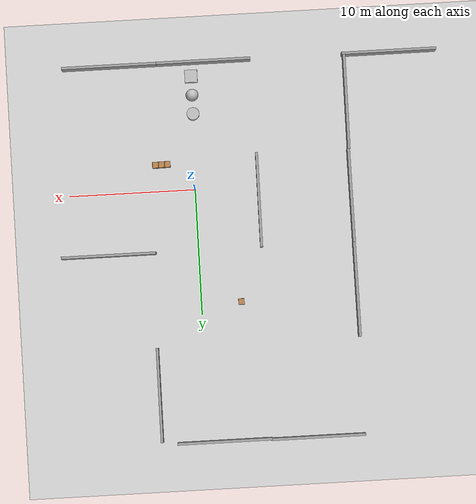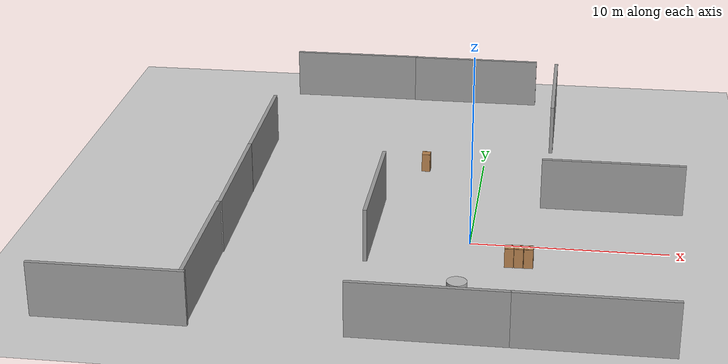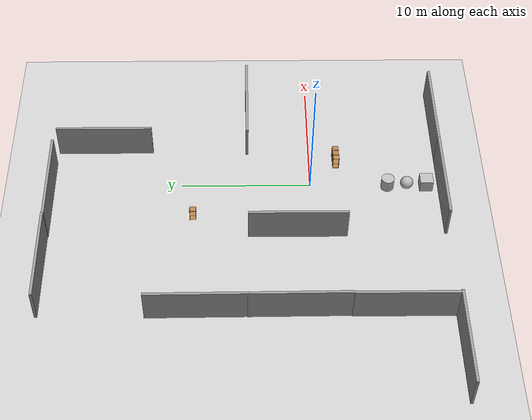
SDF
<sdf version="1.7">
 <world name="default">
  <model name="ground_plane">
   <static>1</static>
   <link name="link">
    <collision name="collision">
     <geometry><plane><normal>0 0 1</normal><size>100 100</size></plane></geometry>
     <surface><friction><ode><mu>100</mu><mu2>50</mu2></ode></friction></surface>
    </collision>
    <visual name="visual">
     <cast_shadows>0</cast_shadows>
     <geometry><plane><normal>0 0 1</normal><size>100 100</size></plane></geometry>
     <material>
      <script><uri>file://media/materials/scripts/gazebo.material</uri><name>Gazebo/Grey</name></script>
     </material>
    </visual>
   </link>
  </model>
  <model name="grey_wall">
   <static>1</static>
   <link name="link">
    <pose>0 0 1.4 0 -0 0</pose>
    <collision name="collision"><geometry><box><size>7.5 0.2 2.8</size></box></geometry></collision>
    <visual name="visual">
     <cast_shadows>0</cast_shadows>
     <geometry><box><size>7.5 0.2 2.8</size></box></geometry>
     <material>
      <script>
       <uri>model://grey_wall/materials/scripts</uri>
       <uri>model://grey_wall/materials/textures</uri>
       <name>vrc/grey_wall</name>
      </script>
     </material>
    </visual>
   </link>
   <pose>6.2728 -10.0751 0 0 -0 0</pose>
  </model>
  <model name="grey_wall_clone">
   <static>1</static>
   <link name="link">
    <pose>0 0 1.4 0 -0 0</pose>
    <collision name="collision"><geometry><box><size>7.5 0.2 2.8</size></box></geometry></collision>
    <visual name="visual">
     <cast_shadows>0</cast_shadows>
     <geometry><box><size>7.5 0.2 2.8</size></box></geometry>
     <material>
      <script>
       <uri>model://grey_wall/materials/scripts</uri>
       <uri>model://grey_wall/materials/textures</uri>
       <name>vrc/grey_wall</name>
      </script>
     </material>
    </visual>
   </link>
   <pose>-1.19798 -10.0759 0 0 -0 0</pose>
  </model>
  <model name="grey_wall_clone_clone_clone_2_clone_clone_1">
   <static>1</static>
   <link name="link">
    <pose>0 0 1.4 0 -0 0</pose>
    <collision name="collision"><geometry><box><size>7.5 0.2 2.8</size></box></geometry></collision>
    <visual name="visual">
     <cast_shadows>0</cast_shadows>
     <geometry><box><size>7.5 0.2 2.8</size></box></geometry>
     <material>
      <script>
       <uri>model://grey_wall/materials/scripts</uri>
       <uri>model://grey_wall/materials/textures</uri>
       <name>vrc/grey_wall</name>
      </script>
     </material>
    </visual>
   </link>
   <pose>-12.3667 -6.21108 0 0 0 -1.57221</pose>
  </model>
  <model name="grey_wall_clone_clone_clone_0_clone">
   <static>1</static>
   <link name="link">
    <pose>0 0 1.4 0 -0 0</pose>
    <collision name="collision"><geometry><box><size>7.5 0.2 2.8</size></box></geometry></collision>
    <visual name="visual">
     <cast_shadows>0</cast_shadows>
     <geometry><box><size>7.5 0.2 2.8</size></box></geometry>
     <material>
      <script>
       <uri>model://grey_wall/materials/scripts</uri>
       <uri>model://grey_wall/materials/textures</uri>
       <name>vrc/grey_wall</name>
      </script>
     </material>
    </visual>
   </link>
   <pose>-1.27102 20.0947 0 0 -0 0</pose>
  </model>
  <model name="grey_wall_clone_clone_clone_0_clone_0">
   <static>1</static>
   <link name="link">
    <pose>0 0 1.4 0 -0 0</pose>
    <collision name="collision"><geometry><box><size>7.5 0.2 2.8</size></box></geometry></collision>
    <visual name="visual">
     <cast_shadows>0</cast_shadows>
     <geometry><box><size>7.5 0.2 2.8</size></box></geometry>
     <material>
      <script>
       <uri>model://grey_wall/materials/scripts</uri>
       <uri>model://grey_wall/materials/textures</uri>
       <name>vrc/grey_wall</name>
      </script>
     </material>
    </visual>
   </link>
   <pose>-8.64642 20.1467 0 0 -0 0</pose>
  </model>
  <model name="grey_wall_clone_clone_clone_2_clone_clone_2_clone_clone_clone_0">
   <static>1</static>
   <link name="link">
    <pose>0 0 1.4 0 -0 0</pose>
    <collision name="collision"><geometry><box><size>7.5 0.2 2.8</size></box></geometry></collision>
    <visual name="visual">
     <cast_shadows>0</cast_shadows>
     <geometry><box><size>7.5 0.2 2.8</size></box></geometry>
     <material>
      <script>
       <uri>model://grey_wall/materials/scripts</uri>
       <uri>model://grey_wall/materials/textures</uri>
       <name>vrc/grey_wall</name>
      </script>
     </material>
    </visual>
   </link>
   <pose>3.69217 16.1824 0 0 0 -1.57221</pose>
  </model>
  <model name="grey_wall_clone_clone_clone_2_clone_clone_2_clone_clone_0">
   <static>1</static>
   <link name="link">
    <pose>0 0 1.4 0 -0 0</pose>
    <collision name="collision"><geometry><box><size>7.5 0.2 2.8</size></box></geometry></collision>
    <visual name="visual">
     <cast_shadows>0</cast_shadows>
     <geometry><box><size>7.5 0.2 2.8</size></box></geometry>
     <material>
      <script>
       <uri>model://grey_wall/materials/scripts</uri>
       <uri>model://grey_wall/materials/textures</uri>
       <name>vrc/grey_wall</name>
      </script>
     </material>
    </visual>
   </link>
   <pose>-5.0235 1.15522 0 0 0 -1.57221</pose>
  </model>
  <model name="grey_wall_clone_0_clone">
   <static>1</static>
   <link name="link">
    <pose>0 0 1.4 0 -0 0</pose>
    <collision name="collision"><geometry><box><size>7.5 0.2 2.8</size></box></geometry></collision>
    <visual name="visual">
     <cast_shadows>0</cast_shadows>
     <geometry><box><size>7.5 0.2 2.8</size></box></geometry>
     <material>
      <script>
       <uri>model://grey_wall/materials/scripts</uri>
       <uri>model://grey_wall/materials/textures</uri>
       <name>vrc/grey_wall</name>
      </script>
     </material>
    </visual>
   </link>
   <pose>-15.9352 -10.0383 0 0 -0 0</pose>
  </model>
  <model name="grey_wall_clone_clone_clone_2_clone_clone_1_clone">
   <static>1</static>
   <link name="link">
    <pose>0 0 1.4 0 -0 0</pose>
    <collision name="collision"><geometry><box><size>7.5 0.2 2.8</size></box></geometry></collision>
    <visual name="visual">
     <cast_shadows>0</cast_shadows>
     <geometry><box><size>7.5 0.2 2.8</size></box></geometry>
     <material>
      <script>
       <uri>model://grey_wall/materials/scripts</uri>
       <uri>model://grey_wall/materials/textures</uri>
       <name>vrc/grey_wall</name>
      </script>
     </material>
    </visual>
   </link>
   <pose>-12.3327 1.25158 0 0 0 -1.56398</pose>
  </model>
  <model name="grey_wall_clone_clone_clone_2_clone_clone_1_clone_clone">
   <static>1</static>
   <link name="link">
    <pose>0 0 1.4 0 -0 0</pose>
    <collision name="collision"><geometry><box><size>7.5 0.2 2.8</size></box></geometry></collision>
    <visual name="visual">
     <cast_shadows>0</cast_shadows>
     <geometry><box><size>7.5 0.2 2.8</size></box></geometry>
     <material>
      <script>
       <uri>model://grey_wall/materials/scripts</uri>
       <uri>model://grey_wall/materials/textures</uri>
       <name>vrc/grey_wall</name>
      </script>
     </material>
    </visual>
   </link>
   <pose>-12.374 8.66342 0 0 0 -1.56398</pose>
  </model>
  <model name="grey_wall_clone_clone_clone_0_clone_0_clone">
   <static>1</static>
   <link name="link">
    <pose>0 0 1.4 0 -0 0</pose>
    <collision name="collision"><geometry><box><size>7.5 0.2 2.8</size></box></geometry></collision>
    <visual name="visual">
     <cast_shadows>0</cast_shadows>
     <geometry><box><size>7.5 0.2 2.8</size></box></geometry>
     <material>
      <script>
       <uri>model://grey_wall/materials/scripts</uri>
       <uri>model://grey_wall/materials/textures</uri>
       <name>vrc/grey_wall</name>
      </script>
     </material>
    </visual>
   </link>
   <pose>7.11453 4.90583 0 0 -0 0</pose>
  </model>
  <model name="cabinet">
   <static>1</static>
   <link name="cabinet_bottom_plate">
    <inertial>
     <pose>0 0 -1 0 -0 0</pose>
     <inertia><ixx>2.05</ixx><ixy>0</ixy><ixz>0</ixz><iyy>2.05</iyy><iyz>0</iyz><izz>2.05</izz></inertia>
     <mass>25</mass>
    </inertial>
    <collision name="cabinet_bottom_plate_geom">
     <pose>0 0 0.01 0 -0 0</pose>
     <geometry><box><size>0.45 0.45 0.02</size></box></geometry>
    </collision>
    <visual name="cabinet_bottom_plate_geom_visual">
     <pose>0 0 0.01 0 -0 0</pose>
     <geometry><box><size>0.45 0.45 0.02</size></box></geometry>
     <material>
      <script><uri>file://media/materials/scripts/gazebo.material</uri><name>Gazebo/Wood</name></script>
     </material>
    </visual>
    <collision name="cabinet_bottom_plate_geom_cabinet_back_plate">
     <pose>0.235 0 0.51 0 -0 0</pose>
     <geometry><box><size>0.02 0.45 1.02</size></box></geometry>
    </collision>
    <visual name="cabinet_bottom_plate_geom_cabinet_back_plate_visual">
     <pose>0.235 0 0.51 0 -0 0</pose>
     <geometry><box><size>0.02 0.45 1.02</size></box></geometry>
     <material>
      <script><uri>file://media/materials/scripts/gazebo.material</uri><name>Gazebo/Wood</name></script>
     </material>
    </visual>
    <collision name="cabinet_bottom_plate_geom_cabinet_left_plate">
     <pose>0 0.235 0.51 0 -0 0</pose>
     <geometry><box><size>0.45 0.02 1.02</size></box></geometry>
    </collision>
    <visual name="cabinet_bottom_plate_geom_cabinet_left_plate_visual">
     <pose>0 0.235 0.51 0 -0 0</pose>
     <geometry><box><size>0.45 0.02 1.02</size></box></geometry>
     <material>
      <script><uri>file://media/materials/scripts/gazebo.material</uri><name>Gazebo/Wood</name></script>
     </material>
    </visual>
    <collision name="cabinet_bottom_plate_geom_cabinet_middle_plate">
     <pose>0 0 0.51 0 -0 0</pose>
     <geometry><box><size>0.45 0.45 0.02</size></box></geometry>
    </collision>
    <visual name="cabinet_bottom_plate_geom_cabinet_middle_plate_visual">
     <pose>0 0 0.51 0 -0 0</pose>
     <geometry><box><size>0.45 0.45 0.02</size></box></geometry>
     <material>
      <script><uri>file://media/materials/scripts/gazebo.material</uri><name>Gazebo/Wood</name></script>
     </material>
    </visual>
    <collision name="cabinet_bottom_plate_geom_cabinet_right_plate">
     <pose>0 -0.235 0.51 0 -0 0</pose>
     <geometry><box><size>0.45 0.02 1.02</size></box></geometry>
    </collision>
    <visual name="cabinet_bottom_plate_geom_cabinet_right_plate_visual">
     <pose>0 -0.235 0.51 0 -0 0</pose>
     <geometry><box><size>0.45 0.02 1.02</size></box></geometry>
     <material>
      <script><uri>file://media/materials/scripts/gazebo.material</uri><name>Gazebo/Wood</name></script>
     </material>
    </visual>
    <collision name="cabinet_bottom_plate_geom_cabinet_top_plate">
     <pose>0 0 1.01 0 -0 0</pose>
     <geometry><box><size>0.45 0.45 0.02</size></box></geometry>
    </collision>
    <visual name="cabinet_bottom_plate_geom_cabinet_top_plate_visual">
     <pose>0 0 1.01 0 -0 0</pose>
     <geometry><box><size>0.45 0.45 0.02</size></box></geometry>
     <material>
      <script><uri>file://media/materials/scripts/gazebo.material</uri><name>Gazebo/Wood</name></script>
     </material>
    </visual>
   </link>
   <pose>3.0379 -2.10061 0 0 -0 0</pose>
  </model>
  <model name="cabinet_0">
   <static>1</static>
   <link name="cabinet_bottom_plate">
    <inertial>
     <pose>0 0 -1 0 -0 0</pose>
     <inertia><ixx>2.05</ixx><ixy>0</ixy><ixz>0</ixz><iyy>2.05</iyy><iyz>0</iyz><izz>2.05</izz></inertia>
     <mass>25</mass>
    </inertial>
    <collision name="cabinet_bottom_plate_geom">
     <pose>0 0 0.01 0 -0 0</pose>
     <geometry><box><size>0.45 0.45 0.02</size></box></geometry>
    </collision>
    <visual name="cabinet_bottom_plate_geom_visual">
     <pose>0 0 0.01 0 -0 0</pose>
     <geometry><box><size>0.45 0.45 0.02</size></box></geometry>
     <material>
      <script><uri>file://media/materials/scripts/gazebo.material</uri><name>Gazebo/Wood</name></script>
     </material>
    </visual>
    <collision name="cabinet_bottom_plate_geom_cabinet_back_plate">
     <pose>0.235 0 0.51 0 -0 0</pose>
     <geometry><box><size>0.02 0.45 1.02</size></box></geometry>
    </collision>
    <visual name="cabinet_bottom_plate_geom_cabinet_back_plate_visual">
     <pose>0.235 0 0.51 0 -0 0</pose>
     <geometry><box><size>0.02 0.45 1.02</size></box></geometry>
     <material>
      <script><uri>file://media/materials/scripts/gazebo.material</uri><name>Gazebo/Wood</name></script>
     </material>
    </visual>
    <collision name="cabinet_bottom_plate_geom_cabinet_left_plate">
     <pose>0 0.235 0.51 0 -0 0</pose>
     <geometry><box><size>0.45 0.02 1.02</size></box></geometry>
    </collision>
    <visual name="cabinet_bottom_plate_geom_cabinet_left_plate_visual">
     <pose>0 0.235 0.51 0 -0 0</pose>
     <geometry><box><size>0.45 0.02 1.02</size></box></geometry>
     <material>
      <script><uri>file://media/materials/scripts/gazebo.material</uri><name>Gazebo/Wood</name></script>
     </material>
    </visual>
    <collision name="cabinet_bottom_plate_geom_cabinet_middle_plate">
     <pose>0 0 0.51 0 -0 0</pose>
     <geometry><box><size>0.45 0.45 0.02</size></box></geometry>
    </collision>
    <visual name="cabinet_bottom_plate_geom_cabinet_middle_plate_visual">
     <pose>0 0 0.51 0 -0 0</pose>
     <geometry><box><size>0.45 0.45 0.02</size></box></geometry>
     <material>
      <script><uri>file://media/materials/scripts/gazebo.material</uri><name>Gazebo/Wood</name></script>
     </material>
    </visual>
    <collision name="cabinet_bottom_plate_geom_cabinet_right_plate">
     <pose>0 -0.235 0.51 0 -0 0</pose>
     <geometry><box><size>0.45 0.02 1.02</size></box></geometry>
    </collision>
    <visual name="cabinet_bottom_plate_geom_cabinet_right_plate_visual">
     <pose>0 -0.235 0.51 0 -0 0</pose>
     <geometry><box><size>0.45 0.02 1.02</size></box></geometry>
     <material>
      <script><uri>file://media/materials/scripts/gazebo.material</uri><name>Gazebo/Wood</name></script>
     </material>
    </visual>
    <collision name="cabinet_bottom_plate_geom_cabinet_top_plate">
     <pose>0 0 1.01 0 -0 0</pose>
     <geometry><box><size>0.45 0.45 0.02</size></box></geometry>
    </collision>
    <visual name="cabinet_bottom_plate_geom_cabinet_top_plate_visual">
     <pose>0 0 1.01 0 -0 0</pose>
     <geometry><box><size>0.45 0.45 0.02</size></box></geometry>
     <material>
      <script><uri>file://media/materials/scripts/gazebo.material</uri><name>Gazebo/Wood</name></script>
     </material>
    </visual>
   </link>
   <pose>2.55586 -2.1092 0 0 -0 0</pose>
  </model>
  <model name="textured_shapes">
   <pose>-0.174561 -7.52232 0.5 0 -0 0</pose>
   <link name="box">
    <pose>0 -1.5 0 0 -0 0</pose>
    <collision name="collision"><geometry><box><size>1 1 1</size></box></geometry></collision>
    <visual name="visual">
     <geometry><box><size>1 1 1</size></box></geometry>
     <material>
      <script>
       <uri>model://textured_shapes/materials/scripts</uri>
       <uri>model://textured_shapes/materials/textures</uri>
       <name>TexturedShape/Squares</name>
      </script>
     </material>
    </visual>
    <inertial>
     <inertia><ixx>1</ixx><ixy>0</ixy><ixz>0</ixz><iyy>1</iyy><iyz>0</iyz><izz>1</izz></inertia>
     <mass>1</mass>
    </inertial>
   </link>
   <link name="sphere">
    <collision name="collision"><geometry><sphere><radius>0.5</radius></sphere></geometry></collision>
    <visual name="visual">
     <geometry><sphere><radius>0.5</radius></sphere></geometry>
     <material>
      <script>
       <uri>model://textured_shapes/materials/scripts</uri>
       <uri>model://textured_shapes/materials/textures</uri>
       <name>TexturedShape/Squares</name>
      </script>
     </material>
    </visual>
    <inertial>
     <inertia><ixx>1</ixx><ixy>0</ixy><ixz>0</ixz><iyy>1</iyy><iyz>0</iyz><izz>1</izz></inertia>
     <mass>1</mass>
    </inertial>
   </link>
   <link name="cylinder">
    <pose>0 1.5 0 0 -0 0</pose>
    <collision name="collision">
     <geometry><cylinder><radius>0.5</radius><length>1</length></cylinder></geometry>
    </collision>
    <visual name="visual">
     <geometry><cylinder><radius>0.5</radius><length>1</length></cylinder></geometry>
     <material>
      <script>
       <uri>model://textured_shapes/materials/scripts</uri>
       <uri>model://textured_shapes/materials/textures</uri>
       <name>TexturedShape/Squares</name>
      </script>
     </material>
    </visual>
    <inertial>
     <inertia><ixx>1</ixx><ixy>0</ixy><ixz>0</ixz><iyy>1</iyy><iyz>0</iyz><izz>1</izz></inertia>
     <mass>1</mass>
    </inertial>
   </link>
  </model>
  <model name="wood_block_10_2_1cm">
   <link name="link">
    <pose>0 0 0.005 0 -0 0</pose>
    <inertial>
     <mass>0.0125</mass>
     <inertia>
      <ixx>7.55208e-07</ixx>
      <ixy>0</ixy>
      <ixz>0</ixz>
      <iyy>1.05208e-05</iyy>
      <iyz>0</iyz>
      <izz>1.10677e-05</izz>
     </inertia>
    </inertial>
    <collision name="collision">
     <geometry><box><size>0.1 0.025 0.01</size></box></geometry>
     <surface>
      <contact>
       <poissons_ratio>0.347</poissons_ratio>
       <elastic_modulus>8.8e+09</elastic_modulus>
       <ode><kp>100000</kp><kd>1</kd><max_vel>1</max_vel><min_depth>0.001</min_depth></ode>
      </contact>
      <friction>
       <torsional>
        <coefficient>1</coefficient>
        <use_patch_radius>0</use_patch_radius>
        <surface_radius>0.05</surface_radius>
       </torsional>
      </friction>
     </surface>
    </collision>
    <visual name="visual">
     <geometry><box><size>0.1 0.025 0.01</size></box></geometry>
     <material>
      <script><uri>file://media/materials/scripts/gazebo.material</uri><name>Gazebo/Wood</name></script>
     </material>
    </visual>
   </link>
   <pose>2.77774 -2.24644 0 0 -0 0</pose>
  </model>
  <model name="cabinet_0_clone">
   <static>1</static>
   <link name="cabinet_bottom_plate">
    <inertial>
     <pose>0 0 -1 0 -0 0</pose>
     <inertia><ixx>2.05</ixx><ixy>0</ixy><ixz>0</ixz><iyy>2.05</iyy><iyz>0</iyz><izz>2.05</izz></inertia>
     <mass>25</mass>
    </inertial>
    <collision name="cabinet_bottom_plate_geom">
     <pose>0 0 0.01 0 -0 0</pose>
     <geometry><box><size>0.45 0.45 0.02</size></box></geometry>
    </collision>
    <visual name="cabinet_bottom_plate_geom_visual">
     <pose>0 0 0.01 0 -0 0</pose>
     <geometry><box><size>0.45 0.45 0.02</size></box></geometry>
     <material>
      <script><uri>file://media/materials/scripts/gazebo.material</uri><name>Gazebo/Wood</name></script>
     </material>
    </visual>
    <collision name="cabinet_bottom_plate_geom_cabinet_back_plate">
     <pose>0.235 0 0.51 0 -0 0</pose>
     <geometry><box><size>0.02 0.45 1.02</size></box></geometry>
    </collision>
    <visual name="cabinet_bottom_plate_geom_cabinet_back_plate_visual">
     <pose>0.235 0 0.51 0 -0 0</pose>
     <geometry><box><size>0.02 0.45 1.02</size></box></geometry>
     <material>
      <script><uri>file://media/materials/scripts/gazebo.material</uri><name>Gazebo/Wood</name></script>
     </material>
    </visual>
    <collision name="cabinet_bottom_plate_geom_cabinet_left_plate">
     <pose>0 0.235 0.51 0 -0 0</pose>
     <geometry><box><size>0.45 0.02 1.02</size></box></geometry>
    </collision>
    <visual name="cabinet_bottom_plate_geom_cabinet_left_plate_visual">
     <pose>0 0.235 0.51 0 -0 0</pose>
     <geometry><box><size>0.45 0.02 1.02</size></box></geometry>
     <material>
      <script><uri>file://media/materials/scripts/gazebo.material</uri><name>Gazebo/Wood</name></script>
     </material>
    </visual>
    <collision name="cabinet_bottom_plate_geom_cabinet_middle_plate">
     <pose>0 0 0.51 0 -0 0</pose>
     <geometry><box><size>0.45 0.45 0.02</size></box></geometry>
    </collision>
    <visual name="cabinet_bottom_plate_geom_cabinet_middle_plate_visual">
     <pose>0 0 0.51 0 -0 0</pose>
     <geometry><box><size>0.45 0.45 0.02</size></box></geometry>
     <material>
      <script><uri>file://media/materials/scripts/gazebo.material</uri><name>Gazebo/Wood</name></script>
     </material>
    </visual>
    <collision name="cabinet_bottom_plate_geom_cabinet_right_plate">
     <pose>0 -0.235 0.51 0 -0 0</pose>
     <geometry><box><size>0.45 0.02 1.02</size></box></geometry>
    </collision>
    <visual name="cabinet_bottom_plate_geom_cabinet_right_plate_visual">
     <pose>0 -0.235 0.51 0 -0 0</pose>
     <geometry><box><size>0.45 0.02 1.02</size></box></geometry>
     <material>
      <script><uri>file://media/materials/scripts/gazebo.material</uri><name>Gazebo/Wood</name></script>
     </material>
    </visual>
    <collision name="cabinet_bottom_plate_geom_cabinet_top_plate">
     <pose>0 0 1.01 0 -0 0</pose>
     <geometry><box><size>0.45 0.45 0.02</size></box></geometry>
    </collision>
    <visual name="cabinet_bottom_plate_geom_cabinet_top_plate_visual">
     <pose>0 0 1.01 0 -0 0</pose>
     <geometry><box><size>0.45 0.45 0.02</size></box></geometry>
     <material>
      <script><uri>file://media/materials/scripts/gazebo.material</uri><name>Gazebo/Wood</name></script>
     </material>
    </visual>
   </link>
   <pose>-3.18753 9.10772 0 0 -0 0</pose>
  </model>
  <model name="cabinet_0_clone_3">
   <static>1</static>
   <link name="cabinet_bottom_plate">
    <inertial>
     <pose>0 0 -1 0 -0 0</pose>
     <inertia><ixx>2.05</ixx><ixy>0</ixy><ixz>0</ixz><iyy>2.05</iyy><iyz>0</iyz><izz>2.05</izz></inertia>
     <mass>25</mass>
    </inertial>
    <collision name="cabinet_bottom_plate_geom">
     <pose>0 0 0.01 0 -0 0</pose>
     <geometry><box><size>0.45 0.45 0.02</size></box></geometry>
    </collision>
    <visual name="cabinet_bottom_plate_geom_visual">
     <pose>0 0 0.01 0 -0 0</pose>
     <geometry><box><size>0.45 0.45 0.02</size></box></geometry>
     <material>
      <script><uri>file://media/materials/scripts/gazebo.material</uri><name>Gazebo/Wood</name></script>
     </material>
    </visual>
    <collision name="cabinet_bottom_plate_geom_cabinet_back_plate">
     <pose>0.235 0 0.51 0 -0 0</pose>
     <geometry><box><size>0.02 0.45 1.02</size></box></geometry>
    </collision>
    <visual name="cabinet_bottom_plate_geom_cabinet_back_plate_visual">
     <pose>0.235 0 0.51 0 -0 0</pose>
     <geometry><box><size>0.02 0.45 1.02</size></box></geometry>
     <material>
      <script><uri>file://media/materials/scripts/gazebo.material</uri><name>Gazebo/Wood</name></script>
     </material>
    </visual>
    <collision name="cabinet_bottom_plate_geom_cabinet_left_plate">
     <pose>0 0.235 0.51 0 -0 0</pose>
     <geometry><box><size>0.45 0.02 1.02</size></box></geometry>
    </collision>
    <visual name="cabinet_bottom_plate_geom_cabinet_left_plate_visual">
     <pose>0 0.235 0.51 0 -0 0</pose>
     <geometry><box><size>0.45 0.02 1.02</size></box></geometry>
     <material>
      <script><uri>file://media/materials/scripts/gazebo.material</uri><name>Gazebo/Wood</name></script>
     </material>
    </visual>
    <collision name="cabinet_bottom_plate_geom_cabinet_middle_plate">
     <pose>0 0 0.51 0 -0 0</pose>
     <geometry><box><size>0.45 0.45 0.02</size></box></geometry>
    </collision>
    <visual name="cabinet_bottom_plate_geom_cabinet_middle_plate_visual">
     <pose>0 0 0.51 0 -0 0</pose>
     <geometry><box><size>0.45 0.45 0.02</size></box></geometry>
     <material>
      <script><uri>file://media/materials/scripts/gazebo.material</uri><name>Gazebo/Wood</name></script>
     </material>
    </visual>
    <collision name="cabinet_bottom_plate_geom_cabinet_right_plate">
     <pose>0 -0.235 0.51 0 -0 0</pose>
     <geometry><box><size>0.45 0.02 1.02</size></box></geometry>
    </collision>
    <visual name="cabinet_bottom_plate_geom_cabinet_right_plate_visual">
     <pose>0 -0.235 0.51 0 -0 0</pose>
     <geometry><box><size>0.45 0.02 1.02</size></box></geometry>
     <material>
      <script><uri>file://media/materials/scripts/gazebo.material</uri><name>Gazebo/Wood</name></script>
     </material>
    </visual>
    <collision name="cabinet_bottom_plate_geom_cabinet_top_plate">
     <pose>0 0 1.01 0 -0 0</pose>
     <geometry><box><size>0.45 0.45 0.02</size></box></geometry>
    </collision>
    <visual name="cabinet_bottom_plate_geom_cabinet_top_plate_visual">
     <pose>0 0 1.01 0 -0 0</pose>
     <geometry><box><size>0.45 0.45 0.02</size></box></geometry>
     <material>
      <script><uri>file://media/materials/scripts/gazebo.material</uri><name>Gazebo/Wood</name></script>
     </material>
    </visual>
   </link>
   <pose>2.0848 -2.11983 0 0 -0 0</pose>
  </model>
 </world>
</sdf>
